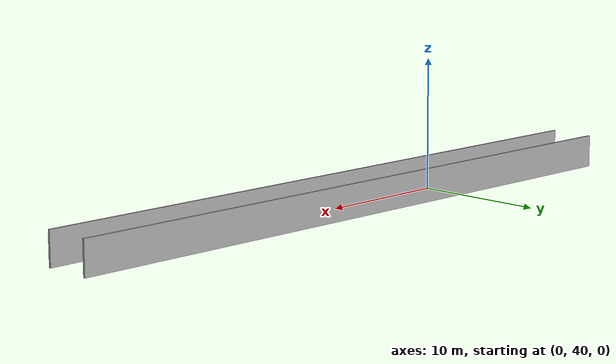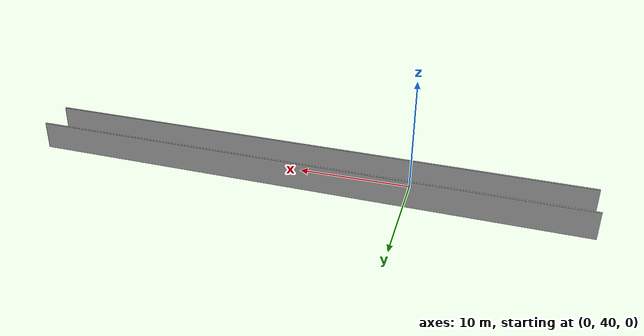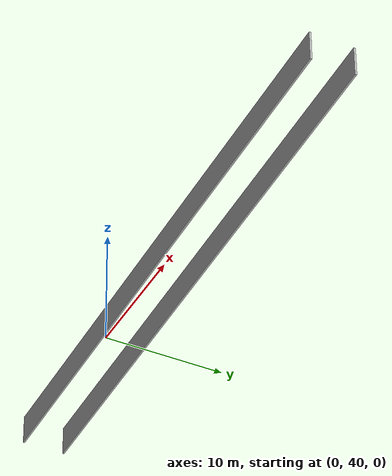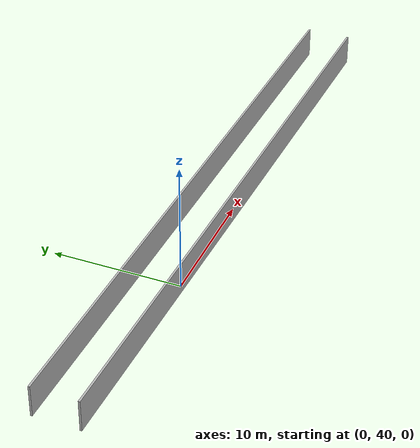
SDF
<?xml version="1.0" ?>
<sdf version="1.6">
  <model name="sps_2802">
    <pose frame="">0 0 0 0 -0 0</pose>
    <static>1</static>
    <self_collide>0</self_collide>
    <allow_auto_disable>0</allow_auto_disable>
    <link name="Wall460">
      <kinematic>0</kinematic>
      <gravity>1</gravity>
      <self_collide>0</self_collide>
      <collision name="collision">
        <geometry>
          <box>
            <size>50.0165 0.15 2.5</size>
          </box>
        </geometry>
        <pose frame="">0 0 0 0 -0 0</pose>
      </collision>
      <visual name="visual">
        <geometry>
          <box>
            <size>50.0165 0.15 2.5</size>
          </box>
        </geometry>
        <pose frame="">0 0 0 0 -0 0</pose>
        <cast_shadows>1</cast_shadows>
        <transparency>0.0</transparency>
      </visual>
      <pose frame="">9.46944 39.5186 1.25 0 -0 3.11591</pose>
    </link>
    <link name="Wall465">
      <kinematic>0</kinematic>
      <gravity>1</gravity>
      <self_collide>0</self_collide>
      <collision name="collision">
        <geometry>
          <box>
            <size>50.0165 0.15 2.5</size>
          </box>
        </geometry>
        <pose frame="">0 0 0 0 -0 0</pose>
      </collision>
      <visual name="visual">
        <geometry>
          <box>
            <size>50.0165 0.15 2.5</size>
          </box>
        </geometry>
        <pose frame="">0 0 0 0 -0 0</pose>
        <cast_shadows>1</cast_shadows>
        <transparency>0.0</transparency>
      </visual>
      <pose frame="">9.46944 43.0195 1.25 0 0 -0.0256802</pose>
    </link>
  </model>
</sdf>
